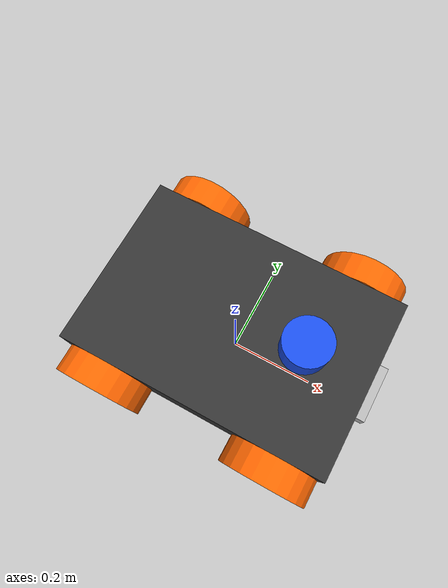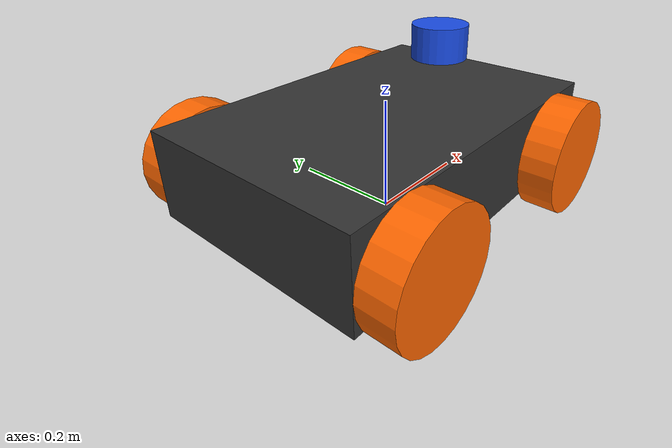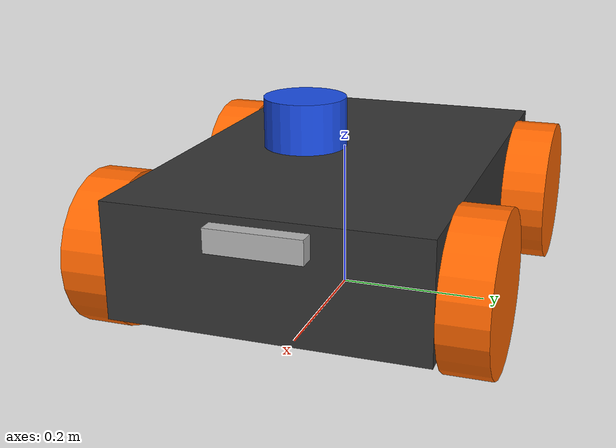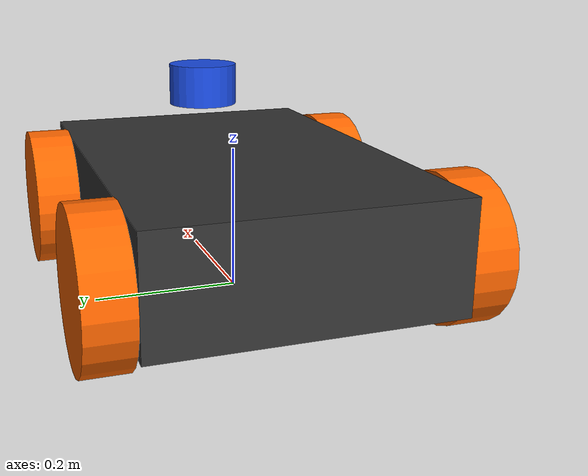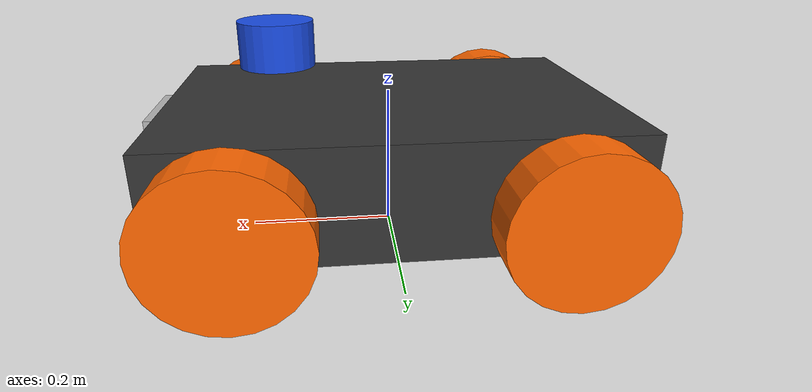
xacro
<?xml version="1.0"?>
<robot xmlns:xacro="http://www.ros.org/wiki/xacro" name="apex_sim_rover">

  <!-- ==================== Root Kinematic Frame ==================== -->
  <link name="base_link"/>

  <!-- ==================== Chassis ==================== -->
  <joint name="base_link_to_chassis" type="fixed">
    <parent link="base_link"/>
    <child link="chassis"/>
    <origin xyz="0 0 0.12" rpy="0 0 0"/>
  </joint>

  <link name="chassis">
    <visual>
      <geometry><box size="0.6 0.4 0.15"/></geometry>
      <material name="dark"><color rgba="0.2 0.2 0.2 1.0"/></material>
    </visual>
    <collision>
      <geometry><box size="0.6 0.4 0.15"/></geometry>
    </collision>
    <inertial>
      <mass value="15.0"/>
      <inertia ixx="0.22" ixy="0" ixz="0" iyy="0.47" iyz="0" izz="0.65"/>
    </inertial>
  </link>

  <!-- ==================== Wheels ==================== -->
  <xacro:macro name="wheel" params="name x_pos y_pos">
    <joint name="${name}_joint" type="continuous">
      <parent link="chassis"/>
      <child link="${name}_link"/>
      <origin xyz="${x_pos} ${y_pos} -0.02" rpy="-1.5708 0 0"/>
      <axis xyz="0 0 1"/>
    </joint>

    <link name="${name}_link">
      <visual>
        <geometry><cylinder radius="0.1" length="0.06"/></geometry>
        <material name="orange"><color rgba="1.0 0.4 0.0 1.0"/></material>
      </visual>
      <collision>
        <geometry><cylinder radius="0.1" length="0.06"/></geometry>
      </collision>
      <inertial>
        <mass value="1.5"/>
        <inertia ixx="0.004" ixy="0" ixz="0" iyy="0.004" iyz="0" izz="0.0075"/>
      </inertial>
    </link>

    <gazebo reference="${name}_link">
      <mu1>1.2</mu1>
      <mu2>1.2</mu2>
      <material>Gazebo/Orange</material>
    </gazebo>
  </xacro:macro>

  <xacro:wheel name="front_left_wheel" x_pos="0.2" y_pos="0.23"/>
  <xacro:wheel name="front_right_wheel" x_pos="0.2" y_pos="-0.23"/>
  <xacro:wheel name="rear_left_wheel" x_pos="-0.2" y_pos="0.23"/>
  <xacro:wheel name="rear_right_wheel" x_pos="-0.2" y_pos="-0.23"/>

  <!-- ==================== LiDAR ==================== -->
  <joint name="lidar_joint" type="fixed">
    <parent link="chassis"/>
    <child link="lidar_link"/>
    <origin xyz="0.15 0 0.15" rpy="0 0 0"/>
  </joint>

  <link name="lidar_link">
    <visual>
      <geometry><cylinder radius="0.05" length="0.06"/></geometry>
      <material name="blue"><color rgba="0.1 0.3 0.9 1.0"/></material>
    </visual>
    <collision>
      <geometry><cylinder radius="0.05" length="0.06"/></geometry>
    </collision>
    <inertial>
      <mass value="0.2"/>
      <inertia ixx="0.0001" ixy="0" ixz="0" iyy="0.0001" iyz="0" izz="0.0001"/>
    </inertial>
  </link>

  <!-- ==================== Front Camera ==================== -->
  <joint name="camera_joint" type="fixed">
    <parent link="chassis"/>
    <child link="camera_link"/>
    <origin xyz="0.30 0 0.05" rpy="0 0 0"/>
  </joint>

  <link name="camera_link">
    <visual>
      <geometry><box size="0.04 0.12 0.03"/></geometry>
      <material name="silver"><color rgba="0.7 0.7 0.7 1.0"/></material>
    </visual>
    <collision>
      <geometry><box size="0.04 0.12 0.03"/></geometry>
    </collision>
    <inertial>
      <mass value="0.1"/>
      <inertia ixx="0.0001" ixy="0" ixz="0" iyy="0.0001" iyz="0" izz="0.0001"/>
    </inertial>
  </link>

  <!-- ==================== Gazebo Plugins ==================== -->
  <!-- 1. Differential Drive Motor Controller -->
  <gazebo>
    <plugin name="diff_drive" filename="libgazebo_ros_diff_drive.so">
      <ros>
        <namespace>/</namespace>
        <remapping>cmd_vel:=cmd_vel</remapping>
        <remapping>odom:=odom</remapping>
      </ros>
      <left_joint>rear_left_wheel_joint</left_joint>
      <right_joint>rear_right_wheel_joint</right_joint>
      <wheel_separation>0.46</wheel_separation>
      <wheel_diameter>0.20</wheel_diameter>
      <max_wheel_torque>20.0</max_wheel_torque>
      <publish_odom>true</publish_odom>
      <publish_odom_tf>true</publish_odom_tf>
      <odometry_frame>odom</odometry_frame>
      <robot_base_frame>base_link</robot_base_frame>
    </plugin>
  </gazebo>

  <!-- 2. LiDAR Ray Sensor -->
  <gazebo reference="lidar_link">
    <sensor name="lidar_sensor" type="ray">
      <always_on>true</always_on>
      <update_rate>10.0</update_rate>
      <visualize>false</visualize>
      <ray>
        <scan>
          <horizontal>
            <samples>360</samples>
            <resolution>1</resolution>
            <min_angle>-3.14159</min_angle>
            <max_angle>3.14159</max_angle>
          </horizontal>
        </scan>
        <range>
          <min>0.15</min>
          <max>10.0</max>
        </range>
      </ray>
      <plugin name="gazebo_lidar" filename="libgazebo_ros_ray_sensor.so">
        <ros>
          <remapping>~/out:=scan</remapping>
        </ros>
        <output_type>sensor_msgs/LaserScan</output_type>
        <frame_name>lidar_link</frame_name>
      </plugin>
    </sensor>
  </gazebo>

  <!-- 3. Front Camera Sensor -->
  <gazebo reference="camera_link">
    <sensor name="front_camera" type="camera">
      <always_on>true</always_on>
      <update_rate>20.0</update_rate>
      <camera>
        <horizontal_fov>1.089</horizontal_fov>
        <image>
          <width>640</width>
          <height>480</height>
          <format>R8G8B8</format>
        </image>
        <clip>
          <near>0.05</near>
          <far>50.0</far>
        </clip>
      </camera>
      <plugin name="gazebo_camera" filename="libgazebo_ros_camera.so">
        <ros>
          <remapping>~/image_raw:=camera/image_raw</remapping>
          <remapping>~/camera_info:=camera/camera_info</remapping>
        </ros>
        <camera_name>camera</camera_name>
        <frame_name>camera_link</frame_name>
      </plugin>
    </sensor>
  </gazebo>

</robot>
